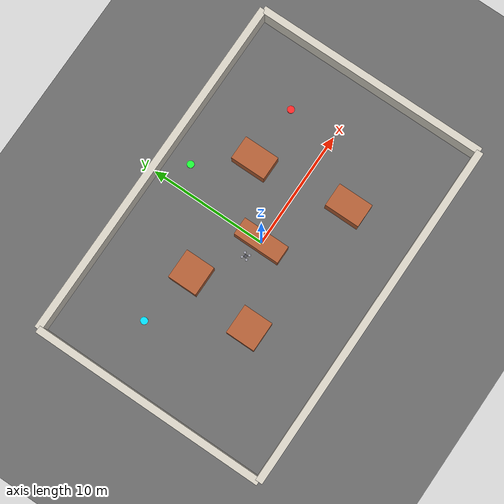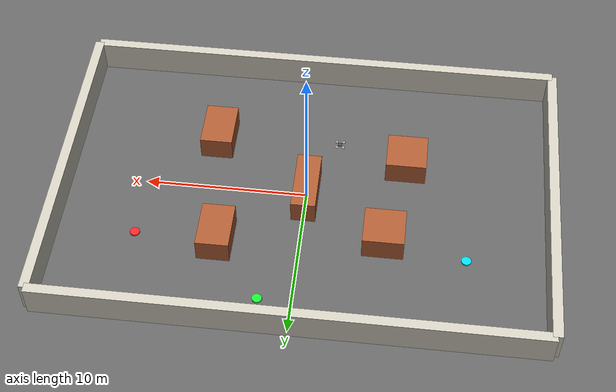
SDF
<?xml version="1.0" ?>
<sdf version="1.9">
  <world name="urban_obstacles_world">
    <gravity>0 0 -9.8</gravity>

    <plugin filename="gz-sim-physics-system" name="gz::sim::systems::Physics"/>
    <plugin filename="gz-sim-user-commands-system" name="gz::sim::systems::UserCommands"/>
    <plugin filename="gz-sim-scene-broadcaster-system" name="gz::sim::systems::SceneBroadcaster"/>

    <light name="sun" type="directional">
      <cast_shadows>true</cast_shadows>
      <pose>0 0 10 0 0 0</pose>
      <diffuse>0.9 0.85 0.7 1</diffuse>
      <specular>0.3 0.3 0.3 1</specular>
      <attenuation>
        <range>1000</range>
        <constant>0.9</constant>
        <linear>0.01</linear>
        <quadratic>0.001</quadratic>
      </attenuation>
      <direction>-0.5 0.1 -0.9</direction>
    </light>

    <!-- Ground: asphalt-gray -->
    <model name="ground_plane">
      <static>true</static>
      <link name="link">
        <collision name="collision">
          <geometry>
            <plane><normal>0 0 1</normal><size>200 200</size></plane>
          </geometry>
        </collision>
        <visual name="visual">
          <geometry>
            <plane><normal>0 0 1</normal><size>200 200</size></plane>
          </geometry>
          <material>
            <ambient>0.35 0.35 0.35 1</ambient>
            <diffuse>0.4 0.4 0.4 1</diffuse>
            <specular>0.05 0.05 0.05 1</specular>
          </material>
        </visual>
      </link>
    </model>

    <!-- Barriers: concrete off-white -->
    <model name="barrier_north">
      <static>true</static>
      <pose>0 10 1 0 0 0</pose>
      <link name="link">
        <collision name="collision"><geometry><box><size>30 0.6 2</size></box></geometry></collision>
        <visual name="visual">
          <geometry><box><size>30 0.6 2</size></box></geometry>
          <material>
            <ambient>0.78 0.76 0.72 1</ambient>
            <diffuse>0.82 0.80 0.75 1</diffuse>
            <specular>0.05 0.05 0.05 1</specular>
          </material>
        </visual>
      </link>
    </model>

    <model name="barrier_south">
      <static>true</static>
      <pose>0 -10 1 0 0 0</pose>
      <link name="link">
        <collision name="collision"><geometry><box><size>30 0.6 2</size></box></geometry></collision>
        <visual name="visual">
          <geometry><box><size>30 0.6 2</size></box></geometry>
          <material>
            <ambient>0.78 0.76 0.72 1</ambient>
            <diffuse>0.82 0.80 0.75 1</diffuse>
            <specular>0.05 0.05 0.05 1</specular>
          </material>
        </visual>
      </link>
    </model>

    <model name="barrier_west">
      <static>true</static>
      <pose>-15 0 1 0 0 0</pose>
      <link name="link">
        <collision name="collision"><geometry><box><size>0.6 20 2</size></box></geometry></collision>
        <visual name="visual">
          <geometry><box><size>0.6 20 2</size></box></geometry>
          <material>
            <ambient>0.78 0.76 0.72 1</ambient>
            <diffuse>0.82 0.80 0.75 1</diffuse>
            <specular>0.05 0.05 0.05 1</specular>
          </material>
        </visual>
      </link>
    </model>

    <model name="barrier_east">
      <static>true</static>
      <pose>15 0 1 0 0 0</pose>
      <link name="link">
        <collision name="collision"><geometry><box><size>0.6 20 2</size></box></geometry></collision>
        <visual name="visual">
          <geometry><box><size>0.6 20 2</size></box></geometry>
          <material>
            <ambient>0.78 0.76 0.72 1</ambient>
            <diffuse>0.82 0.80 0.75 1</diffuse>
            <specular>0.05 0.05 0.05 1</specular>
          </material>
        </visual>
      </link>
    </model>

    <!-- Obstacle blocks: brick/terracotta -->
    <model name="block_1">
      <static>true</static>
      <pose>0 0 0.75 0 0 0</pose>
      <link name="link">
        <collision name="collision"><geometry><box><size>1.5 4 1.5</size></box></geometry></collision>
        <visual name="visual">
          <geometry><box><size>1.5 4 1.5</size></box></geometry>
          <material>
            <ambient>0.62 0.32 0.18 1</ambient>
            <diffuse>0.68 0.36 0.20 1</diffuse>
            <specular>0.05 0.05 0.05 1</specular>
          </material>
        </visual>
      </link>
    </model>

    <model name="block_2">
      <static>true</static>
      <pose>5 4 0.75 0 0 0</pose>
      <link name="link">
        <collision name="collision"><geometry><box><size>2 3 1.5</size></box></geometry></collision>
        <visual name="visual">
          <geometry><box><size>2 3 1.5</size></box></geometry>
          <material>
            <ambient>0.62 0.32 0.18 1</ambient>
            <diffuse>0.68 0.36 0.20 1</diffuse>
            <specular>0.05 0.05 0.05 1</specular>
          </material>
        </visual>
      </link>
    </model>

    <model name="block_3">
      <static>true</static>
      <pose>6 -4 0.75 0 0 0</pose>
      <link name="link">
        <collision name="collision"><geometry><box><size>2 3 1.5</size></box></geometry></collision>
        <visual name="visual">
          <geometry><box><size>2 3 1.5</size></box></geometry>
          <material>
            <ambient>0.62 0.32 0.18 1</ambient>
            <diffuse>0.68 0.36 0.20 1</diffuse>
            <specular>0.05 0.05 0.05 1</specular>
          </material>
        </visual>
      </link>
    </model>

    <model name="block_4">
      <static>true</static>
      <pose>-5 3 0.75 0 0 0</pose>
      <link name="link">
        <collision name="collision"><geometry><box><size>2.5 2.5 1.5</size></box></geometry></collision>
        <visual name="visual">
          <geometry><box><size>2.5 2.5 1.5</size></box></geometry>
          <material>
            <ambient>0.62 0.32 0.18 1</ambient>
            <diffuse>0.68 0.36 0.20 1</diffuse>
            <specular>0.05 0.05 0.05 1</specular>
          </material>
        </visual>
      </link>
    </model>

    <model name="block_5">
      <static>true</static>
      <pose>-6 -3 0.75 0 0 0</pose>
      <link name="link">
        <collision name="collision"><geometry><box><size>2.5 2.5 1.5</size></box></geometry></collision>
        <visual name="visual">
          <geometry><box><size>2.5 2.5 1.5</size></box></geometry>
          <material>
            <ambient>0.62 0.32 0.18 1</ambient>
            <diffuse>0.68 0.36 0.20 1</diffuse>
            <specular>0.05 0.05 0.05 1</specular>
          </material>
        </visual>
      </link>
    </model>

    <!-- Targets: bright yellow, flat cylinders at ground level -->
    <!-- target_1: red — east, behind block_2/block_3 -->
    <model name="target_1">
      <static>true</static>
      <pose>10 4 0.05 0 0 0</pose>
      <link name="link">
        <collision name="collision">
          <geometry><cylinder><radius>0.3</radius><length>0.1</length></cylinder></geometry>
        </collision>
        <visual name="visual">
          <geometry><cylinder><radius>0.3</radius><length>0.1</length></cylinder></geometry>
          <material>
            <ambient>1.0 0.15 0.15 1</ambient>
            <diffuse>1.0 0.15 0.15 1</diffuse>
            <specular>0.4 0.1 0.1 1</specular>
          </material>
        </visual>
      </link>
    </model>

    <!-- target_2: cyan — west, behind block_4/block_5 -->
    <model name="target_2">
      <static>true</static>
      <pose>-10 4 0.05 0 0 0</pose>
      <link name="link">
        <collision name="collision">
          <geometry><cylinder><radius>0.3</radius><length>0.1</length></cylinder></geometry>
        </collision>
        <visual name="visual">
          <geometry><cylinder><radius>0.3</radius><length>0.1</length></cylinder></geometry>
          <material>
            <ambient>0.0 0.85 1.0 1</ambient>
            <diffuse>0.0 0.85 1.0 1</diffuse>
            <specular>0.0 0.3 0.4 1</specular>
          </material>
        </visual>
      </link>
    </model>

    <!-- target_3: green — north, past block_1 (offset avoids APF local minimum) -->
    <model name="target_3">
      <static>true</static>
      <pose>2 8 0.05 0 0 0</pose>
      <link name="link">
        <collision name="collision">
          <geometry><cylinder><radius>0.3</radius><length>0.1</length></cylinder></geometry>
        </collision>
        <visual name="visual">
          <geometry><cylinder><radius>0.3</radius><length>0.1</length></cylinder></geometry>
          <material>
            <ambient>0.1 1.0 0.2 1</ambient>
            <diffuse>0.1 1.0 0.2 1</diffuse>
            <specular>0.05 0.4 0.1 1</specular>
          </material>
        </visual>
      </link>
    </model>

    <!-- UAV: quadcopter (X-frame), static observer at (-2, 0, 5) -->
    <model name="uav_1">
      <static>true</static>
      <pose>-2 0 5 0 0 0</pose>

      <plugin filename="gz-sim-logical-camera-system" name="gz::sim::systems::LogicalCamera"/>

      <link name="base_link">
        <inertial>
          <mass>1.0</mass>
          <inertia>
            <ixx>0.02</ixx><ixy>0</ixy><ixz>0</ixz>
            <iyy>0.02</iyy><iyz>0</iyz>
            <izz>0.04</izz>
          </inertia>
        </inertial>

        <collision name="base_collision">
          <geometry><cylinder><radius>0.12</radius><length>0.04</length></cylinder></geometry>
        </collision>

        <!-- Central body -->
        <visual name="body">
          <pose>0 0 0 0 0 0</pose>
          <geometry><cylinder><radius>0.12</radius><length>0.04</length></cylinder></geometry>
          <material>
            <ambient>0.25 0.25 0.28 1</ambient>
            <diffuse>0.30 0.30 0.33 1</diffuse>
            <specular>0.15 0.15 0.15 1</specular>
          </material>
        </visual>

        <!-- Arm bar NE-SW (yaw = 45 deg) -->
        <visual name="arm_nesw">
          <pose>0 0 0 0 0 0.7854</pose>
          <geometry><box><size>0.56 0.03 0.015</size></box></geometry>
          <material>
            <ambient>0.22 0.22 0.25 1</ambient>
            <diffuse>0.27 0.27 0.30 1</diffuse>
            <specular>0.10 0.10 0.10 1</specular>
          </material>
        </visual>

        <!-- Arm bar NW-SE (yaw = -45 deg) -->
        <visual name="arm_nwse">
          <pose>0 0 0 0 0 -0.7854</pose>
          <geometry><box><size>0.56 0.03 0.015</size></box></geometry>
          <material>
            <ambient>0.22 0.22 0.25 1</ambient>
            <diffuse>0.27 0.27 0.30 1</diffuse>
            <specular>0.10 0.10 0.10 1</specular>
          </material>
        </visual>

        <!-- Rotor NE -->
        <visual name="rotor_ne">
          <pose>0.198 0.198 0.012 0 0 0</pose>
          <geometry><cylinder><radius>0.10</radius><length>0.008</length></cylinder></geometry>
          <material>
            <ambient>0.55 0.55 0.60 1</ambient>
            <diffuse>0.60 0.60 0.65 1</diffuse>
            <specular>0.20 0.20 0.20 1</specular>
          </material>
        </visual>

        <!-- Rotor NW -->
        <visual name="rotor_nw">
          <pose>-0.198 0.198 0.012 0 0 0</pose>
          <geometry><cylinder><radius>0.10</radius><length>0.008</length></cylinder></geometry>
          <material>
            <ambient>0.55 0.55 0.60 1</ambient>
            <diffuse>0.60 0.60 0.65 1</diffuse>
            <specular>0.20 0.20 0.20 1</specular>
          </material>
        </visual>

        <!-- Rotor SW -->
        <visual name="rotor_sw">
          <pose>-0.198 -0.198 0.012 0 0 0</pose>
          <geometry><cylinder><radius>0.10</radius><length>0.008</length></cylinder></geometry>
          <material>
            <ambient>0.55 0.55 0.60 1</ambient>
            <diffuse>0.60 0.60 0.65 1</diffuse>
            <specular>0.20 0.20 0.20 1</specular>
          </material>
        </visual>

        <!-- Rotor SE -->
        <visual name="rotor_se">
          <pose>0.198 -0.198 0.012 0 0 0</pose>
          <geometry><cylinder><radius>0.10</radius><length>0.008</length></cylinder></geometry>
          <material>
            <ambient>0.55 0.55 0.60 1</ambient>
            <diffuse>0.60 0.60 0.65 1</diffuse>
            <specular>0.20 0.20 0.20 1</specular>
          </material>
        </visual>

        <sensor name="logical_camera" type="logical_camera">
          <pose>0 0 0 0 1.5708 0</pose>
          <logical_camera>
            <near>0.5</near>
            <far>50.0</far>
            <horizontal_fov>2.618</horizontal_fov>
            <aspect_ratio>1.0</aspect_ratio>
          </logical_camera>
          <always_on>1</always_on>
          <update_rate>2</update_rate>
          <visualize>false</visualize>
        </sensor>
      </link>
    </model>

  </world>
</sdf>
